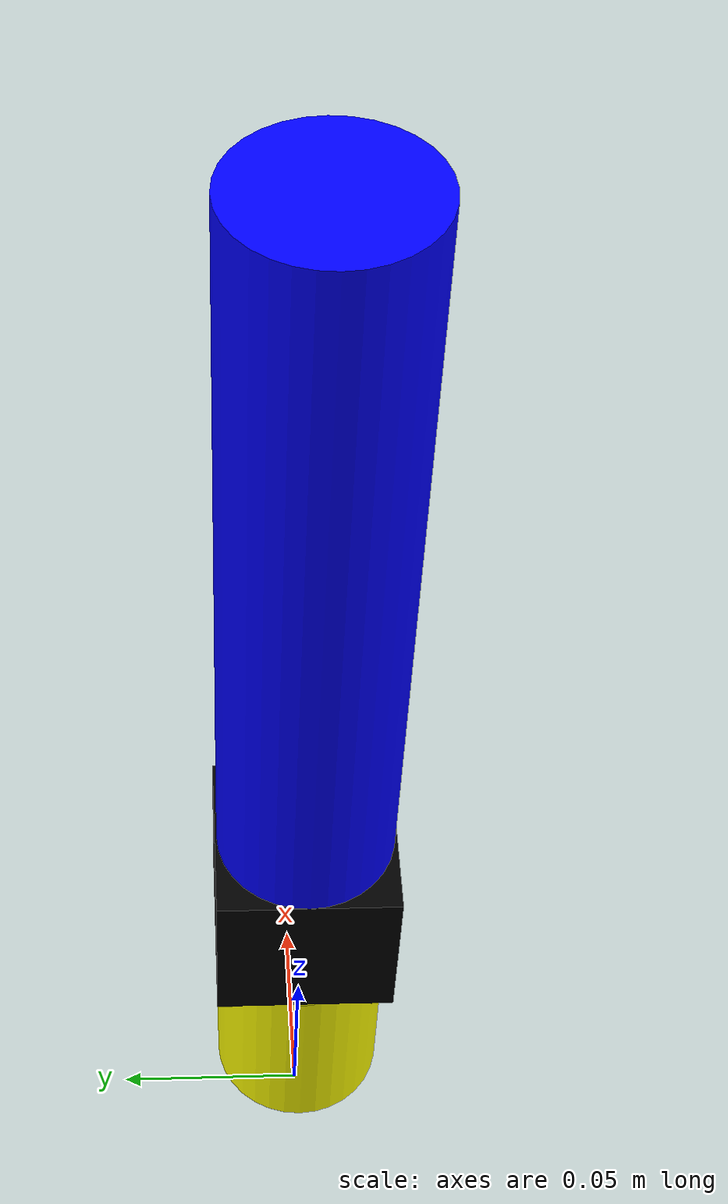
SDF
<?xml version='1.0'?>
<sdf version="1.4">
<model name="club">
  <pose>0 0 0.04 0 0 0</pose>
    <link name="link">
      <inertial>
        <mass>0.1</mass>
        <inertia>
          <ixx>3e-3</ixx>
          <ixy>0.0</ixy>
          <ixz>0.0</ixz>
          <iyy>3e-3</iyy>
          <iyz>0.0</iyz>
          <izz>2.53125e-5</izz>

        </inertia>
      </inertial>
      <collision name="collision">
        <geometry>
          <mesh>
            <uri>model://club/meshes/club.dae</uri>
          </mesh>
        </geometry>
        <surface>
          <contact>
            <poissons_ratio>0.347</poissons_ratio>
            <elastic_modulus>8.8e+09</elastic_modulus>
            <ode>
              <kp>100000</kp>
              <kd>1</kd>
              <max_vel>1.0</max_vel>
              <min_depth>0.001</min_depth>
            </ode>
          </contact>
          <friction>
            <torsional>
              <coefficient>1.0</coefficient>
              <use_patch_radius>0</use_patch_radius>
              <surface_radius>0.065</surface_radius>
            </torsional>
          </friction>
        </surface>
      </collision>
      <visual name="visual">
        <geometry>
          <mesh>
          <uri>model://club/meshes/club.dae</uri>
          </mesh>
        </geometry>
      </visual>
    </link>
  </model>
</sdf>
